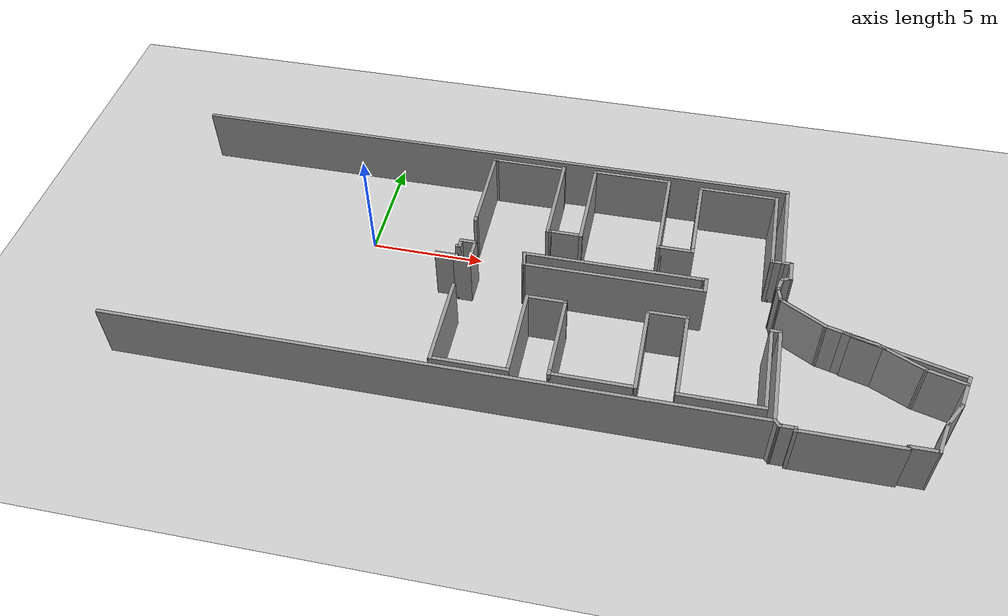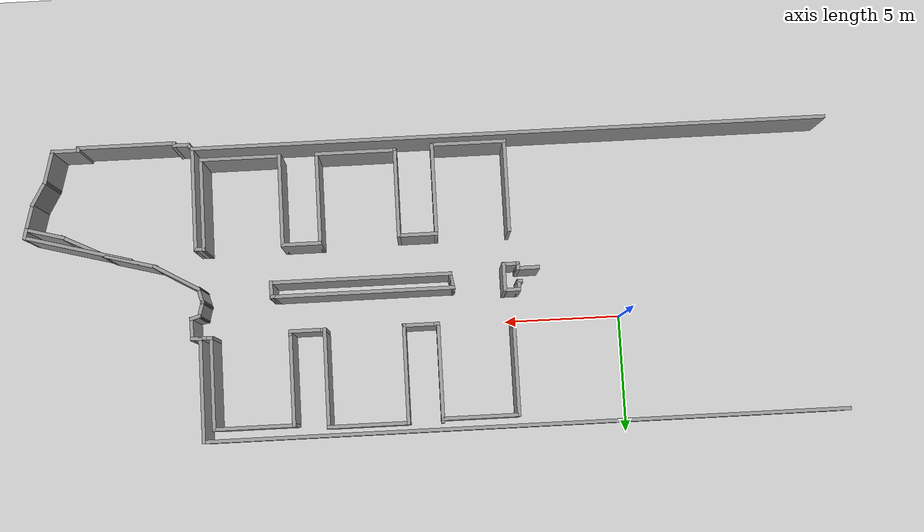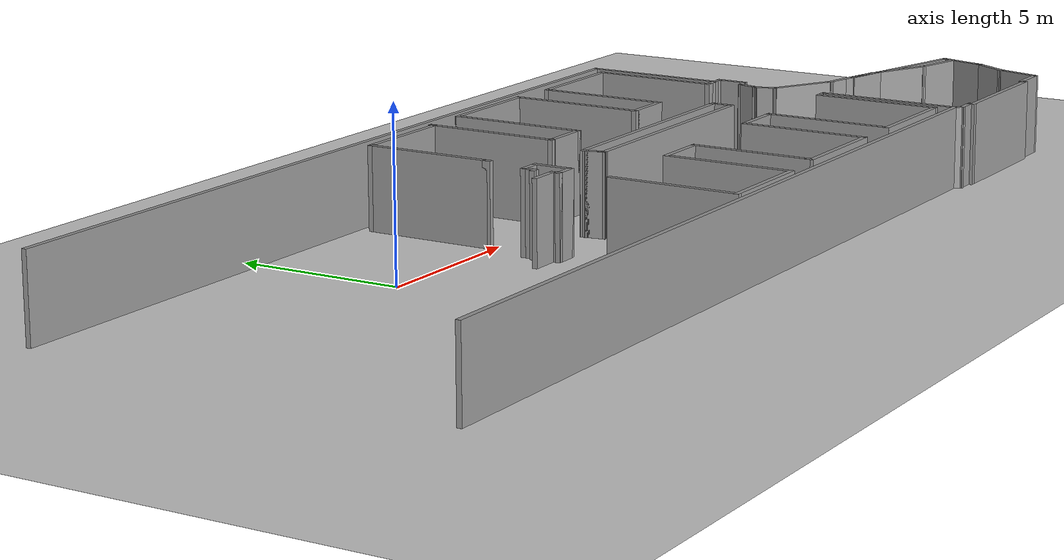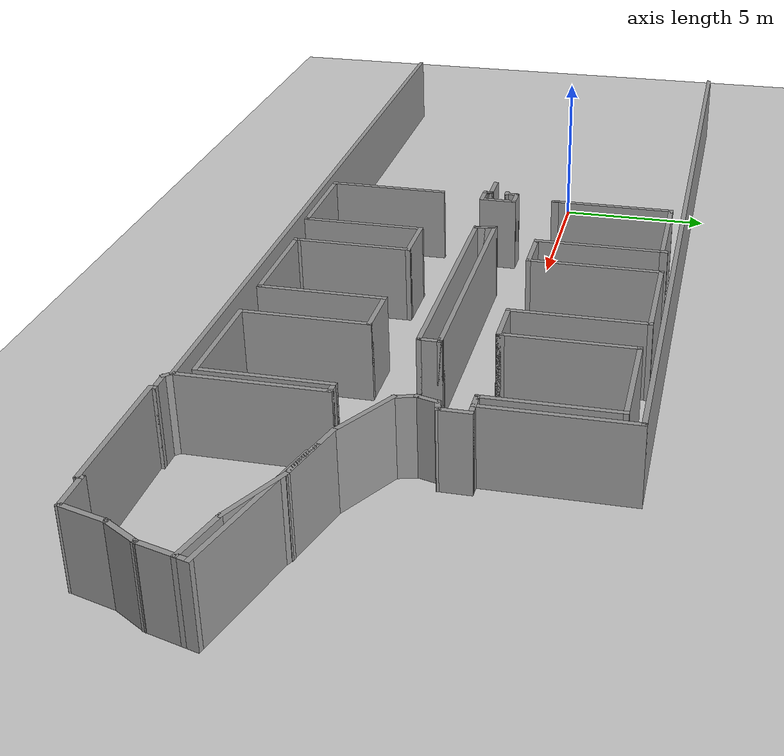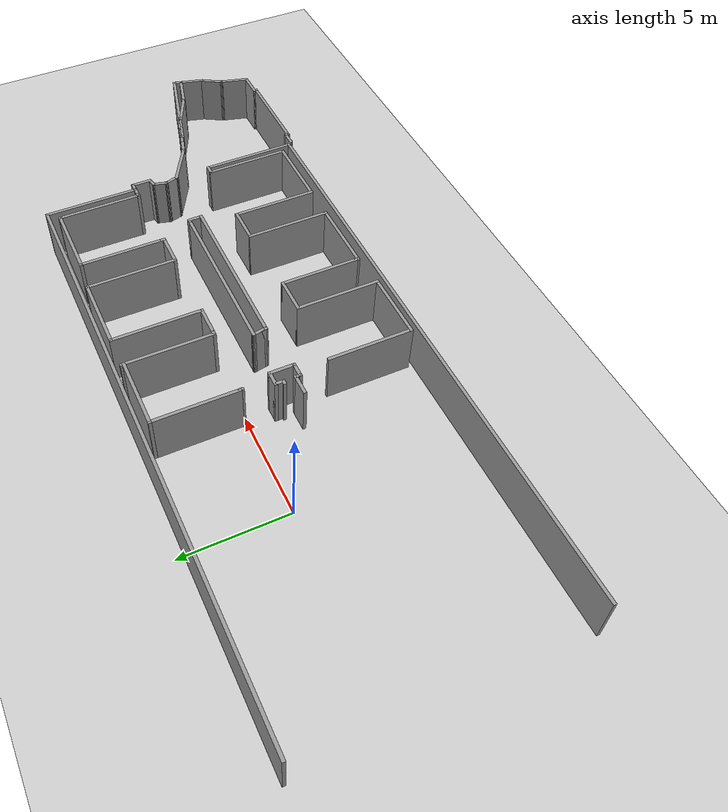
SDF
<sdf version="1.6">
 <world name="default">
  <model name="ground_plane">
   <static>1</static>
   <link name="link">
    <collision name="collision">
     <geometry><plane><normal>0 0 1</normal><size>100 100</size></plane></geometry>
     <surface>
      <contact><collide_bitmask>65535</collide_bitmask></contact>
      <friction><ode><mu>100</mu><mu2>50</mu2></ode></friction>
     </surface>
    </collision>
    <visual name="visual">
     <cast_shadows>0</cast_shadows>
     <geometry><plane><normal>0 0 1</normal><size>100 100</size></plane></geometry>
     <material>
      <script><uri>file://media/materials/scripts/gazebo.material</uri><name>Gazebo/Grey</name></script>
     </material>
    </visual>
   </link>
  </model>
  <model name="planta">
   <pose>-0.447226 0.100458 0 0 -0 0</pose>
   <link name="Wall_10">
    <collision name="Wall_10_Collision">
     <geometry><box><size>0.25 0.15 2.5</size></box></geometry>
     <pose>0 0 1.25 0 -0 0</pose>
    </collision>
    <visual name="Wall_10_Visual">
     <pose>0 0 1.25 0 -0 0</pose>
     <geometry><box><size>0.25 0.15 2.5</size></box></geometry>
     <material>
      <script><uri>file://media/materials/scripts/gazebo.material</uri><name>Gazebo/Grey</name></script>
      <ambient>1 1 1 1</ambient>
     </material>
     <meta><layer>0</layer></meta>
    </visual>
    <pose>4.83723 -1.64046 0 0 -0 0</pose>
   </link>
   <link name="Wall_100">
    <collision name="Wall_100_Collision">
     <geometry><box><size>0.5 0.15 2.5</size></box></geometry>
     <pose>0 0 1.25 0 -0 0</pose>
    </collision>
    <visual name="Wall_100_Visual">
     <pose>0 0 1.25 0 -0 0</pose>
     <geometry><box><size>0.5 0.15 2.5</size></box></geometry>
     <material>
      <script><uri>file://media/materials/scripts/gazebo.material</uri><name>Gazebo/Grey</name></script>
      <ambient>1 1 1 1</ambient>
     </material>
     <meta><layer>0</layer></meta>
    </visual>
    <pose>18.6264 -0.800321 0 0 -0 -2.87979</pose>
   </link>
   <link name="Wall_101">
    <collision name="Wall_101_Collision">
     <geometry><box><size>0.75 0.15 2.5</size></box></geometry>
     <pose>0 0 1.25 0 -0 0</pose>
    </collision>
    <visual name="Wall_101_Visual">
     <pose>0 0 1.25 0 -0 0</pose>
     <geometry><box><size>0.75 0.15 2.5</size></box></geometry>
     <material>
      <script><uri>file://media/materials/scripts/gazebo.material</uri><name>Gazebo/Grey</name></script>
      <ambient>1 1 1 1</ambient>
     </material>
     <meta><layer>0</layer></meta>
    </visual>
    <pose>18.3798 -1.13539 0 0 -0 -1.8326</pose>
   </link>
   <link name="Wall_102">
    <collision name="Wall_102_Collision">
     <geometry><box><size>0.15 0.15 2.5</size></box></geometry>
     <pose>0 0 1.25 0 -0 0</pose>
    </collision>
    <visual name="Wall_102_Visual">
     <pose>0 0 1.25 0 -0 0</pose>
     <geometry><box><size>0.15 0.15 2.5</size></box></geometry>
     <material>
      <script><uri>file://media/materials/scripts/gazebo.material</uri><name>Gazebo/Grey</name></script>
      <ambient>1 1 1 1</ambient>
     </material>
     <meta><layer>0</layer></meta>
    </visual>
    <pose>18.3021 -1.42517 0 0 -0 0</pose>
   </link>
   <link name="Wall_103">
    <collision name="Wall_103_Collision">
     <geometry><box><size>0.75 0.15 2.5</size></box></geometry>
     <pose>0 0 1.25 0 -0 0</pose>
    </collision>
    <visual name="Wall_103_Visual">
     <pose>0 0 1.25 0 -0 0</pose>
     <geometry><box><size>0.75 0.15 2.5</size></box></geometry>
     <material>
      <script><uri>file://media/materials/scripts/gazebo.material</uri><name>Gazebo/Grey</name></script>
      <ambient>1 1 1 1</ambient>
     </material>
     <meta><layer>0</layer></meta>
    </visual>
    <pose>18.3798 -1.71495 0 0 -0 -1.309</pose>
   </link>
   <link name="Wall_104">
    <collision name="Wall_104_Collision">
     <geometry><box><size>2.25 0.15 2.5</size></box></geometry>
     <pose>0 0 1.25 0 -0 0</pose>
    </collision>
    <visual name="Wall_104_Visual">
     <pose>0 0 1.25 0 -0 0</pose>
     <geometry><box><size>2.25 0.15 2.5</size></box></geometry>
     <material>
      <script><uri>file://media/materials/scripts/gazebo.material</uri><name>Gazebo/Grey</name></script>
      <ambient>1 1 1 1</ambient>
     </material>
     <meta><layer>0</layer></meta>
    </visual>
    <pose>19.3667 -2.52973 0 0 -0 -0.523599</pose>
   </link>
   <link name="Wall_105">
    <collision name="Wall_105_Collision">
     <geometry><box><size>2.25 0.15 2.5</size></box></geometry>
     <pose>0 0 1.25 0 -0 0</pose>
    </collision>
    <visual name="Wall_105_Visual">
     <pose>0 0 1.25 0 -0 0</pose>
     <geometry><box><size>2.25 0.15 2.5</size></box></geometry>
     <material>
      <script><uri>file://media/materials/scripts/gazebo.material</uri><name>Gazebo/Grey</name></script>
      <ambient>1 1 1 1</ambient>
     </material>
     <meta><layer>0</layer></meta>
    </visual>
    <pose>21.2903 -3.32648 0 0 -0 -0.261799</pose>
   </link>
   <link name="Wall_107">
    <collision name="Wall_107_Collision">
     <geometry><box><size>4.75 0.15 2.5</size></box></geometry>
     <pose>0 0 1.25 0 -0 0</pose>
    </collision>
    <visual name="Wall_107_Visual">
     <pose>0 0 1.25 0 -0 0</pose>
     <geometry><box><size>4.75 0.15 2.5</size></box></geometry>
     <material>
      <script><uri>file://media/materials/scripts/gazebo.material</uri><name>Gazebo/Grey</name></script>
      <ambient>1 1 1 1</ambient>
     </material>
     <meta><layer>0</layer></meta>
    </visual>
    <pose>23.5471 -3.97871 0 0 -0 -0.261799</pose>
   </link>
   <link name="Wall_108">
    <collision name="Wall_108_Collision">
     <geometry><box><size>0.5 0.15 2.5</size></box></geometry>
     <pose>0 0 1.25 0 -0 0</pose>
    </collision>
    <visual name="Wall_108_Visual">
     <pose>0 0 1.25 0 -0 0</pose>
     <geometry><box><size>0.5 0.15 2.5</size></box></geometry>
     <material>
      <script><uri>file://media/materials/scripts/gazebo.material</uri><name>Gazebo/Grey</name></script>
      <ambient>1 1 1 1</ambient>
     </material>
     <meta><layer>0</layer></meta>
    </visual>
    <pose>25.7235 -4.74303 0 0 -0 -1.8326</pose>
   </link>
   <link name="Wall_109">
    <collision name="Wall_109_Collision">
     <geometry><box><size>1.75 0.15 2.5</size></box></geometry>
     <pose>0 0 1.25 0 -0 0</pose>
    </collision>
    <visual name="Wall_109_Visual">
     <pose>0 0 1.25 0 -0 0</pose>
     <geometry><box><size>1.75 0.15 2.5</size></box></geometry>
     <material>
      <script><uri>file://media/materials/scripts/gazebo.material</uri><name>Gazebo/Grey</name></script>
      <ambient>1 1 1 1</ambient>
     </material>
     <meta><layer>0</layer></meta>
    </visual>
    <pose>24.9055 -4.70501 0 0 -0 2.87979</pose>
   </link>
   <link name="Wall_11">
    <collision name="Wall_11_Collision">
     <geometry><box><size>0.5 0.15 2.5</size></box></geometry>
     <pose>0 0 1.25 0 -0 0</pose>
    </collision>
    <visual name="Wall_11_Visual">
     <pose>0 0 1.25 0 -0 0</pose>
     <geometry><box><size>0.5 0.15 2.5</size></box></geometry>
     <material>
      <script><uri>file://media/materials/scripts/gazebo.material</uri><name>Gazebo/Grey</name></script>
      <ambient>1 1 1 1</ambient>
     </material>
     <meta><layer>0</layer></meta>
    </visual>
    <pose>4.88723 -1.46546 0 0 -0 1.5708</pose>
   </link>
   <link name="Wall_110">
    <collision name="Wall_110_Collision">
     <geometry><box><size>2.18759 0.15 2.5</size></box></geometry>
     <pose>0 0 1.25 0 -0 0</pose>
    </collision>
    <visual name="Wall_110_Visual">
     <pose>0 0 1.25 0 -0 0</pose>
     <geometry><box><size>2.18759 0.15 2.5</size></box></geometry>
     <material>
      <script><uri>file://media/materials/scripts/gazebo.material</uri><name>Gazebo/Grey</name></script>
      <ambient>1 1 1 1</ambient>
     </material>
     <meta><layer>0</layer></meta>
    </visual>
    <pose>23.2186 -4.0481 0 0 -0 2.68426</pose>
   </link>
   <link name="Wall_111">
    <collision name="Wall_111_Collision">
     <geometry><box><size>1.5 0.15 2.5</size></box></geometry>
     <pose>0 0 1.25 0 -0 0</pose>
    </collision>
    <visual name="Wall_111_Visual">
     <pose>0 0 1.25 0 -0 0</pose>
     <geometry><box><size>1.5 0.15 2.5</size></box></geometry>
     <material>
      <script><uri>file://media/materials/scripts/gazebo.material</uri><name>Gazebo/Grey</name></script>
      <ambient>1 1 1 1</ambient>
     </material>
     <meta><layer>0</layer></meta>
    </visual>
    <pose>21.6525 -3.42354 0 0 -0 2.87979</pose>
   </link>
   <link name="Wall_113">
    <collision name="Wall_113_Collision">
     <geometry><box><size>1.25 0.15 2.5</size></box></geometry>
     <pose>0 0 1.25 0 -0 0</pose>
    </collision>
    <visual name="Wall_113_Visual">
     <pose>0 0 1.25 0 -0 0</pose>
     <geometry><box><size>1.25 0.15 2.5</size></box></geometry>
     <material>
      <script><uri>file://media/materials/scripts/gazebo.material</uri><name>Gazebo/Grey</name></script>
      <ambient>1 1 1 1</ambient>
     </material>
     <meta><layer>0</layer></meta>
    </visual>
    <pose>25.5358 -5.44332 0 0 -0 -1.8326</pose>
   </link>
   <link name="Wall_114">
    <collision name="Wall_114_Collision">
     <geometry><box><size>1.25 0.15 2.5</size></box></geometry>
     <pose>0 0 1.25 0 -0 0</pose>
    </collision>
    <visual name="Wall_114_Visual">
     <pose>0 0 1.25 0 -0 0</pose>
     <geometry><box><size>1.25 0.15 2.5</size></box></geometry>
     <material>
      <script><uri>file://media/materials/scripts/gazebo.material</uri><name>Gazebo/Grey</name></script>
      <ambient>1 1 1 1</ambient>
     </material>
     <meta><layer>0</layer></meta>
    </visual>
    <pose>25.1185 -6.4509 0 0 -0 -2.0944</pose>
   </link>
   <link name="Wall_115">
    <collision name="Wall_115_Collision">
     <geometry><box><size>1.5 0.15 2.5</size></box></geometry>
     <pose>0 0 1.25 0 -0 0</pose>
    </collision>
    <visual name="Wall_115_Visual">
     <pose>0 0 1.25 0 -0 0</pose>
     <geometry><box><size>1.5 0.15 2.5</size></box></geometry>
     <material>
      <script><uri>file://media/materials/scripts/gazebo.material</uri><name>Gazebo/Grey</name></script>
      <ambient>1 1 1 1</ambient>
     </material>
     <meta><layer>0</layer></meta>
    </visual>
    <pose>24.6688 -7.57921 0 0 -0 -1.8326</pose>
   </link>
   <link name="Wall_116">
    <collision name="Wall_116_Collision">
     <geometry><box><size>1.25 0.15 2.5</size></box></geometry>
     <pose>0 0 1.25 0 -0 0</pose>
    </collision>
    <visual name="Wall_116_Visual">
     <pose>0 0 1.25 0 -0 0</pose>
     <geometry><box><size>1.25 0.15 2.5</size></box></geometry>
     <material>
      <script><uri>file://media/materials/scripts/gazebo.material</uri><name>Gazebo/Grey</name></script>
      <ambient>1 1 1 1</ambient>
     </material>
     <meta><layer>0</layer></meta>
    </visual>
    <pose>23.9441 -8.23121 0 0 -0 3.14159</pose>
   </link>
   <link name="Wall_117">
    <collision name="Wall_117_Collision">
     <geometry><box><size>0.25 0.15 2.5</size></box></geometry>
     <pose>0 0 1.25 0 -0 0</pose>
    </collision>
    <visual name="Wall_117_Visual">
     <pose>0 0 1.25 0 -0 0</pose>
     <geometry><box><size>0.25 0.15 2.5</size></box></geometry>
     <material>
      <script><uri>file://media/materials/scripts/gazebo.material</uri><name>Gazebo/Grey</name></script>
      <ambient>1 1 1 1</ambient>
     </material>
     <meta><layer>0</layer></meta>
    </visual>
    <pose>23.3941 -8.28121 0 0 -0 -1.5708</pose>
   </link>
   <link name="Wall_118">
    <collision name="Wall_118_Collision">
     <geometry><box><size>4.25 0.15 2.5</size></box></geometry>
     <pose>0 0 1.25 0 -0 0</pose>
    </collision>
    <visual name="Wall_118_Visual">
     <pose>0 0 1.25 0 -0 0</pose>
     <geometry><box><size>4.25 0.15 2.5</size></box></geometry>
     <material>
      <script><uri>file://media/materials/scripts/gazebo.material</uri><name>Gazebo/Grey</name></script>
      <ambient>1 1 1 1</ambient>
     </material>
     <meta><layer>0</layer></meta>
    </visual>
    <pose>21.3441 -8.33121 0 0 -0 3.14159</pose>
   </link>
   <link name="Wall_119">
    <collision name="Wall_119_Collision">
     <geometry><box><size>0.25 0.15 2.5</size></box></geometry>
     <pose>0 0 1.25 0 -0 0</pose>
    </collision>
    <visual name="Wall_119_Visual">
     <pose>0 0 1.25 0 -0 0</pose>
     <geometry><box><size>0.25 0.15 2.5</size></box></geometry>
     <material>
      <script><uri>file://media/materials/scripts/gazebo.material</uri><name>Gazebo/Grey</name></script>
      <ambient>1 1 1 1</ambient>
     </material>
     <meta><layer>0</layer></meta>
    </visual>
    <pose>19.2941 -8.28121 0 0 -0 1.5708</pose>
   </link>
   <link name="Wall_12">
    <collision name="Wall_12_Collision">
     <geometry><box><size>0.75 0.15 2.5</size></box></geometry>
     <pose>0 0 1.25 0 -0 0</pose>
    </collision>
    <visual name="Wall_12_Visual">
     <pose>0 0 1.25 0 -0 0</pose>
     <geometry><box><size>0.75 0.15 2.5</size></box></geometry>
     <material>
      <script><uri>file://media/materials/scripts/gazebo.material</uri><name>Gazebo/Grey</name></script>
      <ambient>1 1 1 1</ambient>
     </material>
     <meta><layer>0</layer></meta>
    </visual>
    <pose>5.18722 -1.29046 0 0 -0 0</pose>
   </link>
   <link name="Wall_120">
    <collision name="Wall_120_Collision">
     <geometry><box><size>0.75 0.15 2.5</size></box></geometry>
     <pose>0 0 1.25 0 -0 0</pose>
    </collision>
    <visual name="Wall_120_Visual">
     <pose>0 0 1.25 0 -0 0</pose>
     <geometry><box><size>0.75 0.15 2.5</size></box></geometry>
     <material>
      <script><uri>file://media/materials/scripts/gazebo.material</uri><name>Gazebo/Grey</name></script>
      <ambient>1 1 1 1</ambient>
     </material>
     <meta><layer>0</layer></meta>
    </visual>
    <pose>18.9941 -8.23121 0 0 -0 3.14159</pose>
   </link>
   <link name="Wall_121">
    <collision name="Wall_121_Collision">
     <geometry><box><size>0.402483 0.15 2.5</size></box></geometry>
     <pose>0 0 1.25 0 -0 0</pose>
    </collision>
    <visual name="Wall_121_Visual">
     <pose>0 0 1.25 0 -0 0</pose>
     <geometry><box><size>0.402483 0.15 2.5</size></box></geometry>
     <material>
      <script><uri>file://media/materials/scripts/gazebo.material</uri><name>Gazebo/Grey</name></script>
      <ambient>1 1 1 1</ambient>
     </material>
     <meta><layer>0</layer></meta>
    </visual>
    <pose>18.6066 -8.14016 0 0 -0 2.33599</pose>
   </link>
   <link name="Wall_13">
    <collision name="Wall_13_Collision">
     <geometry><box><size>1.25 0.15 2.5</size></box></geometry>
     <pose>0 0 1.25 0 -0 0</pose>
    </collision>
    <visual name="Wall_13_Visual">
     <pose>0 0 1.25 0 -0 0</pose>
     <geometry><box><size>1.25 0.15 2.5</size></box></geometry>
     <material>
      <script><uri>file://media/materials/scripts/gazebo.material</uri><name>Gazebo/Grey</name></script>
      <ambient>1 1 1 1</ambient>
     </material>
     <meta><layer>0</layer></meta>
    </visual>
    <pose>5.48723 -1.84046 0 0 -0 -1.5708</pose>
   </link>
   <link name="Wall_14">
    <collision name="Wall_14_Collision">
     <geometry><box><size>0.75 0.15 2.5</size></box></geometry>
     <pose>0 0 1.25 0 -0 0</pose>
    </collision>
    <visual name="Wall_14_Visual">
     <pose>0 0 1.25 0 -0 0</pose>
     <geometry><box><size>0.75 0.15 2.5</size></box></geometry>
     <material>
      <script><uri>file://media/materials/scripts/gazebo.material</uri><name>Gazebo/Grey</name></script>
      <ambient>1 1 1 1</ambient>
     </material>
     <meta><layer>0</layer></meta>
    </visual>
    <pose>5.18722 -2.39046 0 0 -0 3.14159</pose>
   </link>
   <link name="Wall_15">
    <collision name="Wall_15_Collision">
     <geometry><box><size>0.15 0.15 2.5</size></box></geometry>
     <pose>0 0 1.25 0 -0 0</pose>
    </collision>
    <visual name="Wall_15_Visual">
     <pose>0 0 1.25 0 -0 0</pose>
     <geometry><box><size>0.15 0.15 2.5</size></box></geometry>
     <material>
      <script><uri>file://media/materials/scripts/gazebo.material</uri><name>Gazebo/Grey</name></script>
      <ambient>1 1 1 1</ambient>
     </material>
     <meta><layer>0</layer></meta>
    </visual>
    <pose>4.88723 -2.39046 0 0 -0 0</pose>
   </link>
   <link name="Wall_16">
    <collision name="Wall_16_Collision">
     <geometry><box><size>0.15 0.15 2.5</size></box></geometry>
     <pose>0 0 1.25 0 -0 0</pose>
    </collision>
    <visual name="Wall_16_Visual">
     <pose>0 0 1.25 0 -0 0</pose>
     <geometry><box><size>0.15 0.15 2.5</size></box></geometry>
     <material>
      <script><uri>file://media/materials/scripts/gazebo.material</uri><name>Gazebo/Grey</name></script>
      <ambient>1 1 1 1</ambient>
     </material>
     <meta><layer>0</layer></meta>
    </visual>
    <pose>4.88723 -2.39046 0 0 -0 0</pose>
   </link>
   <link name="Wall_17">
    <collision name="Wall_17_Collision">
     <geometry><box><size>0.25 0.15 2.5</size></box></geometry>
     <pose>0 0 1.25 0 -0 0</pose>
    </collision>
    <visual name="Wall_17_Visual">
     <pose>0 0 1.25 0 -0 0</pose>
     <geometry><box><size>0.25 0.15 2.5</size></box></geometry>
     <material>
      <script><uri>file://media/materials/scripts/gazebo.material</uri><name>Gazebo/Grey</name></script>
      <ambient>1 1 1 1</ambient>
     </material>
     <meta><layer>0</layer></meta>
    </visual>
    <pose>4.88723 -2.34046 0 0 -0 1.5708</pose>
   </link>
   <link name="Wall_18">
    <collision name="Wall_18_Collision">
     <geometry><box><size>0.25 0.15 2.5</size></box></geometry>
     <pose>0 0 1.25 0 -0 0</pose>
    </collision>
    <visual name="Wall_18_Visual">
     <pose>0 0 1.25 0 -0 0</pose>
     <geometry><box><size>0.25 0.15 2.5</size></box></geometry>
     <material>
      <script><uri>file://media/materials/scripts/gazebo.material</uri><name>Gazebo/Grey</name></script>
      <ambient>1 1 1 1</ambient>
     </material>
     <meta><layer>0</layer></meta>
    </visual>
    <pose>4.88723 -2.24046 0 0 -0 1.5708</pose>
   </link>
   <link name="Wall_19">
    <collision name="Wall_19_Collision">
     <geometry><box><size>1 0.15 2.5</size></box></geometry>
     <pose>0 0 1.25 0 -0 0</pose>
    </collision>
    <visual name="Wall_19_Visual">
     <pose>0 0 1.25 0 -0 0</pose>
     <geometry><box><size>1 0.15 2.5</size></box></geometry>
     <material>
      <script><uri>file://media/materials/scripts/gazebo.material</uri><name>Gazebo/Grey</name></script>
      <ambient>1 1 1 1</ambient>
     </material>
     <meta><layer>0</layer></meta>
    </visual>
    <pose>4.46223 -2.19046 0 0 -0 3.14159</pose>
   </link>
   <link name="Wall_24">
    <collision name="Wall_24_Collision">
     <geometry><box><size>7.75 0.15 2.5</size></box></geometry>
     <pose>0 0 1.25 0 -0 0</pose>
    </collision>
    <visual name="Wall_24_Visual">
     <pose>0 0 1.25 0 -0 0</pose>
     <geometry><box><size>7.75 0.15 2.5</size></box></geometry>
     <material>
      <script><uri>file://media/materials/scripts/gazebo.material</uri><name>Gazebo/Grey</name></script>
      <ambient>1 1 1 1</ambient>
     </material>
     <meta><layer>0</layer></meta>
    </visual>
    <pose>11.4772 -1.51046 0 0 -0 0</pose>
   </link>
   <link name="Wall_25">
    <collision name="Wall_25_Collision">
     <geometry><box><size>0.25 0.15 2.5</size></box></geometry>
     <pose>0 0 1.25 0 -0 0</pose>
    </collision>
    <visual name="Wall_25_Visual">
     <pose>0 0 1.25 0 -0 0</pose>
     <geometry><box><size>0.25 0.15 2.5</size></box></geometry>
     <material>
      <script><uri>file://media/materials/scripts/gazebo.material</uri><name>Gazebo/Grey</name></script>
      <ambient>1 1 1 1</ambient>
     </material>
     <meta><layer>0</layer></meta>
    </visual>
    <pose>15.3272 -1.51046 0 0 -0 0</pose>
   </link>
   <link name="Wall_26">
    <collision name="Wall_26_Collision">
     <geometry><box><size>0.75 0.15 2.5</size></box></geometry>
     <pose>0 0 1.25 0 -0 0</pose>
    </collision>
    <visual name="Wall_26_Visual">
     <pose>0 0 1.25 0 -0 0</pose>
     <geometry><box><size>0.75 0.15 2.5</size></box></geometry>
     <material>
      <script><uri>file://media/materials/scripts/gazebo.material</uri><name>Gazebo/Grey</name></script>
      <ambient>1 1 1 1</ambient>
     </material>
     <meta><layer>0</layer></meta>
    </visual>
    <pose>15.3772 -1.81046 0 0 -0 -1.5708</pose>
   </link>
   <link name="Wall_27">
    <collision name="Wall_27_Collision">
     <geometry><box><size>7.75 0.15 2.5</size></box></geometry>
     <pose>0 0 1.25 0 -0 0</pose>
    </collision>
    <visual name="Wall_27_Visual">
     <pose>0 0 1.25 0 -0 0</pose>
     <geometry><box><size>7.75 0.15 2.5</size></box></geometry>
     <material>
      <script><uri>file://media/materials/scripts/gazebo.material</uri><name>Gazebo/Grey</name></script>
      <ambient>1 1 1 1</ambient>
     </material>
     <meta><layer>0</layer></meta>
    </visual>
    <pose>11.5772 -2.11046 0 0 -0 3.14159</pose>
   </link>
   <link name="Wall_28">
    <collision name="Wall_28_Collision">
     <geometry><box><size>0.758276 0.15 2.5</size></box></geometry>
     <pose>0 0 1.25 0 -0 0</pose>
    </collision>
    <visual name="Wall_28_Visual">
     <pose>0 0 1.25 0 -0 0</pose>
     <geometry><box><size>0.758276 0.15 2.5</size></box></geometry>
     <material>
      <script><uri>file://media/materials/scripts/gazebo.material</uri><name>Gazebo/Grey</name></script>
      <ambient>1 1 1 1</ambient>
     </material>
     <meta><layer>0</layer></meta>
    </visual>
    <pose>7.72723 -1.81046 0 0 -0 1.73595</pose>
   </link>
   <link name="Wall_29">
    <collision name="Wall_29_Collision">
     <geometry><box><size>0.758276 0.15 2.5</size></box></geometry>
     <pose>0 0 1.25 0 -0 0</pose>
    </collision>
    <visual name="Wall_29_Visual">
     <pose>0 0 1.25 0 -0 0</pose>
     <geometry><box><size>0.758276 0.15 2.5</size></box></geometry>
     <material>
      <script><uri>file://media/materials/scripts/gazebo.material</uri><name>Gazebo/Grey</name></script>
      <ambient>1 1 1 1</ambient>
     </material>
     <meta><layer>0</layer></meta>
    </visual>
    <pose>7.72723 -1.81046 0 0 -0 -1.40565</pose>
   </link>
   <link name="Wall_30">
    <collision name="Wall_30_Collision">
     <geometry><box><size>0.15 0.15 2.5</size></box></geometry>
     <pose>0 0 1.25 0 -0 0</pose>
    </collision>
    <visual name="Wall_30_Visual">
     <pose>0 0 1.25 0 -0 0</pose>
     <geometry><box><size>0.15 0.15 2.5</size></box></geometry>
     <material>
      <script><uri>file://media/materials/scripts/gazebo.material</uri><name>Gazebo/Grey</name></script>
      <ambient>1 1 1 1</ambient>
     </material>
     <meta><layer>0</layer></meta>
    </visual>
    <pose>7.77722 -2.11046 0 0 -0 0</pose>
   </link>
   <link name="Wall_32">
    <collision name="Wall_32_Collision">
     <geometry><box><size>27.25 0.15 2.5</size></box></geometry>
     <pose>0 0 1.25 0 -0 0</pose>
    </collision>
    <visual name="Wall_32_Visual">
     <pose>0 0 1.25 0 -0 0</pose>
     <geometry><box><size>27.25 0.15 2.5</size></box></geometry>
     <material>
      <script><uri>file://media/materials/scripts/gazebo.material</uri><name>Gazebo/Grey</name></script>
      <ambient>1 1 1 1</ambient>
     </material>
     <meta><layer>0</layer></meta>
    </visual>
    <pose>4.89549 4.44497 0 0 -0 0</pose>
   </link>
   <link name="Wall_33">
    <collision name="Wall_33_Collision">
     <geometry><box><size>4.5 0.15 2.5</size></box></geometry>
     <pose>0 0 1.25 0 -0 0</pose>
    </collision>
    <visual name="Wall_33_Visual">
     <pose>0 0 1.25 0 -0 0</pose>
     <geometry><box><size>4.5 0.15 2.5</size></box></geometry>
     <material>
      <script><uri>file://media/materials/scripts/gazebo.material</uri><name>Gazebo/Grey</name></script>
      <ambient>1 1 1 1</ambient>
     </material>
     <meta><layer>0</layer></meta>
    </visual>
    <pose>18.4455 2.26997 0 0 -0 -1.5708</pose>
   </link>
   <link name="Wall_34">
    <collision name="Wall_34_Collision">
     <geometry><box><size>0.5 0.15 2.5</size></box></geometry>
     <pose>0 0 1.25 0 -0 0</pose>
    </collision>
    <visual name="Wall_34_Visual">
     <pose>0 0 1.25 0 -0 0</pose>
     <geometry><box><size>0.5 0.15 2.5</size></box></geometry>
     <material>
      <script><uri>file://media/materials/scripts/gazebo.material</uri><name>Gazebo/Grey</name></script>
      <ambient>1 1 1 1</ambient>
     </material>
     <meta><layer>0</layer></meta>
    </visual>
    <pose>18.2705 0.094972 0 0 -0 3.14159</pose>
   </link>
   <link name="Wall_35">
    <collision name="Wall_35_Collision">
     <geometry><box><size>0.25 0.15 2.5</size></box></geometry>
     <pose>0 0 1.25 0 -0 0</pose>
    </collision>
    <visual name="Wall_35_Visual">
     <pose>0 0 1.25 0 -0 0</pose>
     <geometry><box><size>0.25 0.15 2.5</size></box></geometry>
     <material>
      <script><uri>file://media/materials/scripts/gazebo.material</uri><name>Gazebo/Grey</name></script>
      <ambient>1 1 1 1</ambient>
     </material>
     <meta><layer>0</layer></meta>
    </visual>
    <pose>18.0455 0.094972 0 0 -0 3.14159</pose>
   </link>
   <link name="Wall_36">
    <collision name="Wall_36_Collision">
     <geometry><box><size>4 0.15 2.5</size></box></geometry>
     <pose>0 0 1.25 0 -0 0</pose>
    </collision>
    <visual name="Wall_36_Visual">
     <pose>0 0 1.25 0 -0 0</pose>
     <geometry><box><size>4 0.15 2.5</size></box></geometry>
     <material>
      <script><uri>file://media/materials/scripts/gazebo.material</uri><name>Gazebo/Grey</name></script>
      <ambient>1 1 1 1</ambient>
     </material>
     <meta><layer>0</layer></meta>
    </visual>
    <pose>17.9955 2.01997 0 0 -0 1.5708</pose>
   </link>
   <link name="Wall_37">
    <collision name="Wall_37_Collision">
     <geometry><box><size>3.5 0.15 2.5</size></box></geometry>
     <pose>0 0 1.25 0 -0 0</pose>
    </collision>
    <visual name="Wall_37_Visual">
     <pose>0 0 1.25 0 -0 0</pose>
     <geometry><box><size>3.5 0.15 2.5</size></box></geometry>
     <material>
      <script><uri>file://media/materials/scripts/gazebo.material</uri><name>Gazebo/Grey</name></script>
      <ambient>1 1 1 1</ambient>
     </material>
     <meta><layer>0</layer></meta>
    </visual>
    <pose>16.3205 3.94497 0 0 -0 3.14159</pose>
   </link>
   <link name="Wall_38">
    <collision name="Wall_38_Collision">
     <geometry><box><size>4 0.15 2.5</size></box></geometry>
     <pose>0 0 1.25 0 -0 0</pose>
    </collision>
    <visual name="Wall_38_Visual">
     <pose>0 0 1.25 0 -0 0</pose>
     <geometry><box><size>4 0.15 2.5</size></box></geometry>
     <material>
      <script><uri>file://media/materials/scripts/gazebo.material</uri><name>Gazebo/Grey</name></script>
      <ambient>1 1 1 1</ambient>
     </material>
     <meta><layer>0</layer></meta>
    </visual>
    <pose>14.6455 2.01997 0 0 -0 -1.5708</pose>
   </link>
   <link name="Wall_39">
    <collision name="Wall_39_Collision">
     <geometry><box><size>0.25 0.15 2.5</size></box></geometry>
     <pose>0 0 1.25 0 -0 0</pose>
    </collision>
    <visual name="Wall_39_Visual">
     <pose>0 0 1.25 0 -0 0</pose>
     <geometry><box><size>0.25 0.15 2.5</size></box></geometry>
     <material>
      <script><uri>file://media/materials/scripts/gazebo.material</uri><name>Gazebo/Grey</name></script>
      <ambient>1 1 1 1</ambient>
     </material>
     <meta><layer>0</layer></meta>
    </visual>
    <pose>14.6455 0.044972 0 0 -0 -1.5708</pose>
   </link>
   <link name="Wall_40">
    <collision name="Wall_40_Collision">
     <geometry><box><size>1.5 0.15 2.5</size></box></geometry>
     <pose>0 0 1.25 0 -0 0</pose>
    </collision>
    <visual name="Wall_40_Visual">
     <pose>0 0 1.25 0 -0 0</pose>
     <geometry><box><size>1.5 0.15 2.5</size></box></geometry>
     <material>
      <script><uri>file://media/materials/scripts/gazebo.material</uri><name>Gazebo/Grey</name></script>
      <ambient>1 1 1 1</ambient>
     </material>
     <meta><layer>0</layer></meta>
    </visual>
    <pose>13.9705 -0.005028 0 0 -0 3.14159</pose>
   </link>
   <link name="Wall_41">
    <collision name="Wall_41_Collision">
     <geometry><box><size>0.25 0.15 2.5</size></box></geometry>
     <pose>0 0 1.25 0 -0 0</pose>
    </collision>
    <visual name="Wall_41_Visual">
     <pose>0 0 1.25 0 -0 0</pose>
     <geometry><box><size>0.25 0.15 2.5</size></box></geometry>
     <material>
      <script><uri>file://media/materials/scripts/gazebo.material</uri><name>Gazebo/Grey</name></script>
      <ambient>1 1 1 1</ambient>
     </material>
     <meta><layer>0</layer></meta>
    </visual>
    <pose>13.2455 -0.005028 0 0 -0 3.14159</pose>
   </link>
   <link name="Wall_42">
    <collision name="Wall_42_Collision">
     <geometry><box><size>4.25 0.15 2.5</size></box></geometry>
     <pose>0 0 1.25 0 -0 0</pose>
    </collision>
    <visual name="Wall_42_Visual">
     <pose>0 0 1.25 0 -0 0</pose>
     <geometry><box><size>4.25 0.15 2.5</size></box></geometry>
     <material>
      <script><uri>file://media/materials/scripts/gazebo.material</uri><name>Gazebo/Grey</name></script>
      <ambient>1 1 1 1</ambient>
     </material>
     <meta><layer>0</layer></meta>
    </visual>
    <pose>13.1955 2.04497 0 0 -0 1.5708</pose>
   </link>
   <link name="Wall_43">
    <collision name="Wall_43_Collision">
     <geometry><box><size>3.5 0.15 2.5</size></box></geometry>
     <pose>0 0 1.25 0 -0 0</pose>
    </collision>
    <visual name="Wall_43_Visual">
     <pose>0 0 1.25 0 -0 0</pose>
     <geometry><box><size>3.5 0.15 2.5</size></box></geometry>
     <material>
      <script><uri>file://media/materials/scripts/gazebo.material</uri><name>Gazebo/Grey</name></script>
      <ambient>1 1 1 1</ambient>
     </material>
     <meta><layer>0</layer></meta>
    </visual>
    <pose>11.5205 4.09497 0 0 -0 3.14159</pose>
   </link>
   <link name="Wall_44">
    <collision name="Wall_44_Collision">
     <geometry><box><size>4.25 0.15 2.5</size></box></geometry>
     <pose>0 0 1.25 0 -0 0</pose>
    </collision>
    <visual name="Wall_44_Visual">
     <pose>0 0 1.25 0 -0 0</pose>
     <geometry><box><size>4.25 0.15 2.5</size></box></geometry>
     <material>
      <script><uri>file://media/materials/scripts/gazebo.material</uri><name>Gazebo/Grey</name></script>
      <ambient>1 1 1 1</ambient>
     </material>
     <meta><layer>0</layer></meta>
    </visual>
    <pose>9.84549 2.04497 0 0 -0 -1.5708</pose>
   </link>
   <link name="Wall_45">
    <collision name="Wall_45_Collision">
     <geometry><box><size>1.5 0.15 2.5</size></box></geometry>
     <pose>0 0 1.25 0 -0 0</pose>
    </collision>
    <visual name="Wall_45_Visual">
     <pose>0 0 1.25 0 -0 0</pose>
     <geometry><box><size>1.5 0.15 2.5</size></box></geometry>
     <material>
      <script><uri>file://media/materials/scripts/gazebo.material</uri><name>Gazebo/Grey</name></script>
      <ambient>1 1 1 1</ambient>
     </material>
     <meta><layer>0</layer></meta>
    </visual>
    <pose>9.17049 -0.005028 0 0 -0 3.14159</pose>
   </link>
   <link name="Wall_46">
    <collision name="Wall_46_Collision">
     <geometry><box><size>0.15 0.15 2.5</size></box></geometry>
     <pose>0 0 1.25 0 -0 0</pose>
    </collision>
    <visual name="Wall_46_Visual">
     <pose>0 0 1.25 0 -0 0</pose>
     <geometry><box><size>0.15 0.15 2.5</size></box></geometry>
     <material>
      <script><uri>file://media/materials/scripts/gazebo.material</uri><name>Gazebo/Grey</name></script>
      <ambient>1 1 1 1</ambient>
     </material>
     <meta><layer>0</layer></meta>
    </visual>
    <pose>8.49549 -0.005028 0 0 -0 0</pose>
   </link>
   <link name="Wall_47">
    <collision name="Wall_47_Collision">
     <geometry><box><size>0.15 0.15 2.5</size></box></geometry>
     <pose>0 0 1.25 0 -0 0</pose>
    </collision>
    <visual name="Wall_47_Visual">
     <pose>0 0 1.25 0 -0 0</pose>
     <geometry><box><size>0.15 0.15 2.5</size></box></geometry>
     <material>
      <script><uri>file://media/materials/scripts/gazebo.material</uri><name>Gazebo/Grey</name></script>
      <ambient>1 1 1 1</ambient>
     </material>
     <meta><layer>0</layer></meta>
    </visual>
    <pose>8.49549 -0.005028 0 0 -0 0</pose>
   </link>
   <link name="Wall_48">
    <collision name="Wall_48_Collision">
     <geometry><box><size>0.15 0.15 2.5</size></box></geometry>
     <pose>0 0 1.25 0 -0 0</pose>
    </collision>
    <visual name="Wall_48_Visual">
     <pose>0 0 1.25 0 -0 0</pose>
     <geometry><box><size>0.15 0.15 2.5</size></box></geometry>
     <material>
      <script><uri>file://media/materials/scripts/gazebo.material</uri><name>Gazebo/Grey</name></script>
      <ambient>1 1 1 1</ambient>
     </material>
     <meta><layer>0</layer></meta>
    </visual>
    <pose>8.49549 -0.005028 0 0 -0 0</pose>
   </link>
   <link name="Wall_49">
    <collision name="Wall_49_Collision">
     <geometry><box><size>0.25 0.15 2.5</size></box></geometry>
     <pose>0 0 1.25 0 -0 0</pose>
    </collision>
    <visual name="Wall_49_Visual">
     <pose>0 0 1.25 0 -0 0</pose>
     <geometry><box><size>0.25 0.15 2.5</size></box></geometry>
     <material>
      <script><uri>file://media/materials/scripts/gazebo.material</uri><name>Gazebo/Grey</name></script>
      <ambient>1 1 1 1</ambient>
     </material>
     <meta><layer>0</layer></meta>
    </visual>
    <pose>8.44549 -0.005028 0 0 -0 3.14159</pose>
   </link>
   <link name="Wall_50">
    <collision name="Wall_50_Collision">
     <geometry><box><size>4.25 0.15 2.5</size></box></geometry>
     <pose>0 0 1.25 0 -0 0</pose>
    </collision>
    <visual name="Wall_50_Visual">
     <pose>0 0 1.25 0 -0 0</pose>
     <geometry><box><size>4.25 0.15 2.5</size></box></geometry>
     <material>
      <script><uri>file://media/materials/scripts/gazebo.material</uri><name>Gazebo/Grey</name></script>
      <ambient>1 1 1 1</ambient>
     </material>
     <meta><layer>0</layer></meta>
    </visual>
    <pose>8.39549 2.04497 0 0 -0 1.5708</pose>
   </link>
   <link name="Wall_51">
    <collision name="Wall_51_Collision">
     <geometry><box><size>0.25 0.15 2.5</size></box></geometry>
     <pose>0 0 1.25 0 -0 0</pose>
    </collision>
    <visual name="Wall_51_Visual">
     <pose>0 0 1.25 0 -0 0</pose>
     <geometry><box><size>0.25 0.15 2.5</size></box></geometry>
     <material>
      <script><uri>file://media/materials/scripts/gazebo.material</uri><name>Gazebo/Grey</name></script>
      <ambient>1 1 1 1</ambient>
     </material>
     <meta><layer>0</layer></meta>
    </visual>
    <pose>8.39549 4.04497 0 0 -0 -1.5708</pose>
   </link>
   <link name="Wall_52">
    <collision name="Wall_52_Collision">
     <geometry><box><size>3.25 0.15 2.5</size></box></geometry>
     <pose>0 0 1.25 0 -0 0</pose>
    </collision>
    <visual name="Wall_52_Visual">
     <pose>0 0 1.25 0 -0 0</pose>
     <geometry><box><size>3.25 0.15 2.5</size></box></geometry>
     <material>
      <script><uri>file://media/materials/scripts/gazebo.material</uri><name>Gazebo/Grey</name></script>
      <ambient>1 1 1 1</ambient>
     </material>
     <meta><layer>0</layer></meta>
    </visual>
    <pose>6.84549 3.99497 0 0 -0 3.14159</pose>
   </link>
   <link name="Wall_53">
    <collision name="Wall_53_Collision">
     <geometry><box><size>0.25 0.15 2.5</size></box></geometry>
     <pose>0 0 1.25 0 -0 0</pose>
    </collision>
    <visual name="Wall_53_Visual">
     <pose>0 0 1.25 0 -0 0</pose>
     <geometry><box><size>0.25 0.15 2.5</size></box></geometry>
     <material>
      <script><uri>file://media/materials/scripts/gazebo.material</uri><name>Gazebo/Grey</name></script>
      <ambient>1 1 1 1</ambient>
     </material>
     <meta><layer>0</layer></meta>
    </visual>
    <pose>5.24549 3.99497 0 0 -0 3.14159</pose>
   </link>
   <link name="Wall_54">
    <collision name="Wall_54_Collision">
     <geometry><box><size>4 0.15 2.5</size></box></geometry>
     <pose>0 0 1.25 0 -0 0</pose>
    </collision>
    <visual name="Wall_54_Visual">
     <pose>0 0 1.25 0 -0 0</pose>
     <geometry><box><size>4 0.15 2.5</size></box></geometry>
     <material>
      <script><uri>file://media/materials/scripts/gazebo.material</uri><name>Gazebo/Grey</name></script>
      <ambient>1 1 1 1</ambient>
     </material>
     <meta><layer>0</layer></meta>
    </visual>
    <pose>5.19549 2.06997 0 0 -0 -1.5708</pose>
   </link>
   <link name="Wall_55">
    <collision name="Wall_55_Collision">
     <geometry><box><size>0.25 0.15 2.5</size></box></geometry>
     <pose>0 0 1.25 0 -0 0</pose>
    </collision>
    <visual name="Wall_55_Visual">
     <pose>0 0 1.25 0 -0 0</pose>
     <geometry><box><size>0.25 0.15 2.5</size></box></geometry>
     <material>
      <script><uri>file://media/materials/scripts/gazebo.material</uri><name>Gazebo/Grey</name></script>
      <ambient>1 1 1 1</ambient>
     </material>
     <meta><layer>0</layer></meta>
    </visual>
    <pose>5.19549 0.094972 0 0 -0 -1.5708</pose>
   </link>
   <link name="Wall_80">
    <collision name="Wall_80_Collision">
     <geometry><box><size>4 0.15 2.5</size></box></geometry>
     <pose>0 0 1.25 0 -0 0</pose>
    </collision>
    <visual name="Wall_80_Visual">
     <pose>0 0 1.25 0 -0 0</pose>
     <geometry><box><size>4 0.15 2.5</size></box></geometry>
     <material>
      <script><uri>file://media/materials/scripts/gazebo.material</uri><name>Gazebo/Grey</name></script>
      <ambient>1 1 1 1</ambient>
     </material>
     <meta><layer>0</layer></meta>
    </visual>
    <pose>5.16919 -5.77411 0 0 -0 -1.5708</pose>
   </link>
   <link name="Wall_81">
    <collision name="Wall_81_Collision">
     <geometry><box><size>3.25 0.15 2.5</size></box></geometry>
     <pose>0 0 1.25 0 -0 0</pose>
    </collision>
    <visual name="Wall_81_Visual">
     <pose>0 0 1.25 0 -0 0</pose>
     <geometry><box><size>3.25 0.15 2.5</size></box></geometry>
     <material>
      <script><uri>file://media/materials/scripts/gazebo.material</uri><name>Gazebo/Grey</name></script>
      <ambient>1 1 1 1</ambient>
     </material>
     <meta><layer>0</layer></meta>
    </visual>
    <pose>6.71919 -7.69911 0 0 -0 0</pose>
   </link>
   <link name="Wall_82">
    <collision name="Wall_82_Collision">
     <geometry><box><size>4 0.15 2.5</size></box></geometry>
     <pose>0 0 1.25 0 -0 0</pose>
    </collision>
    <visual name="Wall_82_Visual">
     <pose>0 0 1.25 0 -0 0</pose>
     <geometry><box><size>4 0.15 2.5</size></box></geometry>
     <material>
      <script><uri>file://media/materials/scripts/gazebo.material</uri><name>Gazebo/Grey</name></script>
      <ambient>1 1 1 1</ambient>
     </material>
     <meta><layer>0</layer></meta>
    </visual>
    <pose>8.26919 -5.77411 0 0 -0 1.5708</pose>
   </link>
   <link name="Wall_83">
    <collision name="Wall_83_Collision">
     <geometry><box><size>1.75 0.15 2.5</size></box></geometry>
     <pose>0 0 1.25 0 -0 0</pose>
    </collision>
    <visual name="Wall_83_Visual">
     <pose>0 0 1.25 0 -0 0</pose>
     <geometry><box><size>1.75 0.15 2.5</size></box></geometry>
     <material>
      <script><uri>file://media/materials/scripts/gazebo.material</uri><name>Gazebo/Grey</name></script>
      <ambient>1 1 1 1</ambient>
     </material>
     <meta><layer>0</layer></meta>
    </visual>
    <pose>9.0692 -3.84911 0 0 -0 0</pose>
   </link>
   <link name="Wall_84">
    <collision name="Wall_84_Collision">
     <geometry><box><size>3.75 0.15 2.5</size></box></geometry>
     <pose>0 0 1.25 0 -0 0</pose>
    </collision>
    <visual name="Wall_84_Visual">
     <pose>0 0 1.25 0 -0 0</pose>
     <geometry><box><size>3.75 0.15 2.5</size></box></geometry>
     <material>
      <script><uri>file://media/materials/scripts/gazebo.material</uri><name>Gazebo/Grey</name></script>
      <ambient>1 1 1 1</ambient>
     </material>
     <meta><layer>0</layer></meta>
    </visual>
    <pose>9.86919 -5.64911 0 0 -0 -1.5708</pose>
   </link>
   <link name="Wall_85">
    <collision name="Wall_85_Collision">
     <geometry><box><size>0.25 0.15 2.5</size></box></geometry>
     <pose>0 0 1.25 0 -0 0</pose>
    </collision>
    <visual name="Wall_85_Visual">
     <pose>0 0 1.25 0 -0 0</pose>
     <geometry><box><size>0.25 0.15 2.5</size></box></geometry>
     <material>
      <script><uri>file://media/materials/scripts/gazebo.material</uri><name>Gazebo/Grey</name></script>
      <ambient>1 1 1 1</ambient>
     </material>
     <meta><layer>0</layer></meta>
    </visual>
    <pose>9.86919 -7.49911 0 0 -0 -1.5708</pose>
   </link>
   <link name="Wall_86">
    <collision name="Wall_86_Collision">
     <geometry><box><size>3.5 0.15 2.5</size></box></geometry>
     <pose>0 0 1.25 0 -0 0</pose>
    </collision>
    <visual name="Wall_86_Visual">
     <pose>0 0 1.25 0 -0 0</pose>
     <geometry><box><size>3.5 0.15 2.5</size></box></geometry>
     <material>
      <script><uri>file://media/materials/scripts/gazebo.material</uri><name>Gazebo/Grey</name></script>
      <ambient>1 1 1 1</ambient>
     </material>
     <meta><layer>0</layer></meta>
    </visual>
    <pose>11.5442 -7.54911 0 0 -0 0</pose>
   </link>
   <link name="Wall_87">
    <collision name="Wall_87_Collision">
     <geometry><box><size>4 0.15 2.5</size></box></geometry>
     <pose>0 0 1.25 0 -0 0</pose>
    </collision>
    <visual name="Wall_87_Visual">
     <pose>0 0 1.25 0 -0 0</pose>
     <geometry><box><size>4 0.15 2.5</size></box></geometry>
     <material>
      <script><uri>file://media/materials/scripts/gazebo.material</uri><name>Gazebo/Grey</name></script>
      <ambient>1 1 1 1</ambient>
     </material>
     <meta><layer>0</layer></meta>
    </visual>
    <pose>13.2192 -5.62411 0 0 -0 1.5708</pose>
   </link>
   <link name="Wall_88">
    <collision name="Wall_88_Collision">
     <geometry><box><size>1.75 0.15 2.5</size></box></geometry>
     <pose>0 0 1.25 0 -0 0</pose>
    </collision>
    <visual name="Wall_88_Visual">
     <pose>0 0 1.25 0 -0 0</pose>
     <geometry><box><size>1.75 0.15 2.5</size></box></geometry>
     <material>
      <script><uri>file://media/materials/scripts/gazebo.material</uri><name>Gazebo/Grey</name></script>
      <ambient>1 1 1 1</ambient>
     </material>
     <meta><layer>0</layer></meta>
    </visual>
    <pose>14.0192 -3.69911 0 0 -0 0</pose>
   </link>
   <link name="Wall_89">
    <collision name="Wall_89_Collision">
     <geometry><box><size>4 0.15 2.5</size></box></geometry>
     <pose>0 0 1.25 0 -0 0</pose>
    </collision>
    <visual name="Wall_89_Visual">
     <pose>0 0 1.25 0 -0 0</pose>
     <geometry><box><size>4 0.15 2.5</size></box></geometry>
     <material>
      <script><uri>file://media/materials/scripts/gazebo.material</uri><name>Gazebo/Grey</name></script>
      <ambient>1 1 1 1</ambient>
     </material>
     <meta><layer>0</layer></meta>
    </visual>
    <pose>14.8192 -5.62411 0 0 -0 -1.5708</pose>
   </link>
   <link name="Wall_90">
    <collision name="Wall_90_Collision">
     <geometry><box><size>3.5 0.15 2.5</size></box></geometry>
     <pose>0 0 1.25 0 -0 0</pose>
    </collision>
    <visual name="Wall_90_Visual">
     <pose>0 0 1.25 0 -0 0</pose>
     <geometry><box><size>3.5 0.15 2.5</size></box></geometry>
     <material>
      <script><uri>file://media/materials/scripts/gazebo.material</uri><name>Gazebo/Grey</name></script>
      <ambient>1 1 1 1</ambient>
     </material>
     <meta><layer>0</layer></meta>
    </visual>
    <pose>16.4942 -7.54911 0 0 -0 0</pose>
   </link>
   <link name="Wall_91">
    <collision name="Wall_91_Collision">
     <geometry><box><size>4 0.15 2.5</size></box></geometry>
     <pose>0 0 1.25 0 -0 0</pose>
    </collision>
    <visual name="Wall_91_Visual">
     <pose>0 0 1.25 0 -0 0</pose>
     <geometry><box><size>4 0.15 2.5</size></box></geometry>
     <material>
      <script><uri>file://media/materials/scripts/gazebo.material</uri><name>Gazebo/Grey</name></script>
      <ambient>1 1 1 1</ambient>
     </material>
     <meta><layer>0</layer></meta>
    </visual>
    <pose>18.1692 -5.62411 0 0 -0 1.5708</pose>
   </link>
   <link name="Wall_92">
    <collision name="Wall_92_Collision">
     <geometry><box><size>0.5 0.15 2.5</size></box></geometry>
     <pose>0 0 1.25 0 -0 0</pose>
    </collision>
    <visual name="Wall_92_Visual">
     <pose>0 0 1.25 0 -0 0</pose>
     <geometry><box><size>0.5 0.15 2.5</size></box></geometry>
     <material>
      <script><uri>file://media/materials/scripts/gazebo.material</uri><name>Gazebo/Grey</name></script>
      <ambient>1 1 1 1</ambient>
     </material>
     <meta><layer>0</layer></meta>
    </visual>
    <pose>18.3442 -3.69911 0 0 -0 0</pose>
   </link>
   <link name="Wall_93">
    <collision name="Wall_93_Collision">
     <geometry><box><size>4.5 0.15 2.5</size></box></geometry>
     <pose>0 0 1.25 0 -0 0</pose>
    </collision>
    <visual name="Wall_93_Visual">
     <pose>0 0 1.25 0 -0 0</pose>
     <geometry><box><size>4.5 0.15 2.5</size></box></geometry>
     <material>
      <script><uri>file://media/materials/scripts/gazebo.material</uri><name>Gazebo/Grey</name></script>
      <ambient>1 1 1 1</ambient>
     </material>
     <meta><layer>0</layer></meta>
    </visual>
    <pose>18.5192 -5.87411 0 0 -0 -1.5708</pose>
   </link>
   <link name="Wall_94">
    <collision name="Wall_94_Collision">
     <geometry><box><size>27.25 0.15 2.5</size></box></geometry>
     <pose>0 0 1.25 0 -0 0</pose>
    </collision>
    <visual name="Wall_94_Visual">
     <pose>0 0 1.25 0 -0 0</pose>
     <geometry><box><size>27.25 0.15 2.5</size></box></geometry>
     <material>
      <script><uri>file://media/materials/scripts/gazebo.material</uri><name>Gazebo/Grey</name></script>
      <ambient>1 1 1 1</ambient>
     </material>
     <meta><layer>0</layer></meta>
    </visual>
    <pose>4.96919 -8.04911 0 0 -0 3.14159</pose>
   </link>
   <link name="Wall_98">
    <collision name="Wall_98_Collision">
     <geometry><box><size>0.5 0.15 2.5</size></box></geometry>
     <pose>0 0 1.25 0 -0 0</pose>
    </collision>
    <visual name="Wall_98_Visual">
     <pose>0 0 1.25 0 -0 0</pose>
     <geometry><box><size>0.5 0.15 2.5</size></box></geometry>
     <material>
      <script><uri>file://media/materials/scripts/gazebo.material</uri><name>Gazebo/Grey</name></script>
      <ambient>1 1 1 1</ambient>
     </material>
     <meta><layer>0</layer></meta>
    </visual>
    <pose>18.6205 0.094972 0 0 -0 0</pose>
   </link>
   <link name="Wall_99">
    <collision name="Wall_99_Collision">
     <geometry><box><size>1 0.15 2.5</size></box></geometry>
     <pose>0 0 1.25 0 -0 0</pose>
    </collision>
    <visual name="Wall_99_Visual">
     <pose>0 0 1.25 0 -0 0</pose>
     <geometry><box><size>1 0.15 2.5</size></box></geometry>
     <material>
      <script><uri>file://media/materials/scripts/gazebo.material</uri><name>Gazebo/Grey</name></script>
      <ambient>1 1 1 1</ambient>
     </material>
     <meta><layer>0</layer></meta>
    </visual>
    <pose>18.7955 -0.330028 0 0 -0 -1.5708</pose>
   </link>
   <static>1</static>
  </model>
 </world>
</sdf>
